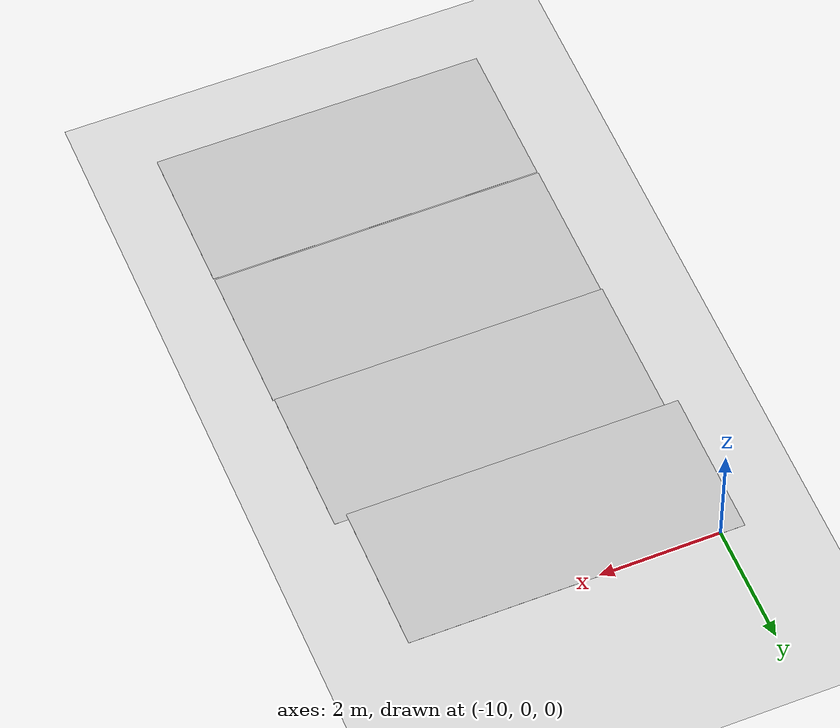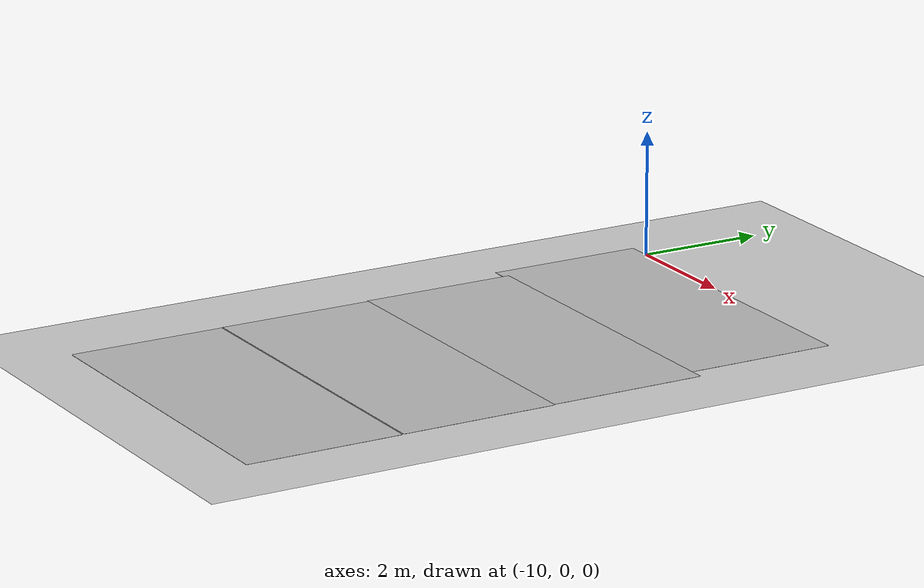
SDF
<sdf version="1.6">
 <world name="default">
  <light name="sun" type="directional">
   <pose>0 0 10 0 -0 0</pose>
   <diffuse>0.8 0.8 0.8 1</diffuse>
   <specular>0.2 0.2 0.2 1</specular>
   <attenuation>
    <range>1000</range>
    <constant>0.9</constant>
    <linear>0.01</linear>
    <quadratic>0.001</quadratic>
   </attenuation>
   <direction>-0.5 0.1 -0.9</direction>
  </light>
  <model name="ground_plane">
   <static>1</static>
   <link name="link">
    <collision name="collision">
     <geometry><plane><normal>0 0 1</normal><size>1000 100</size></plane></geometry>
     <surface>
      <contact><collide_bitmask>65535</collide_bitmask></contact>
      <friction><ode><mu>100</mu><mu2>50</mu2></ode></friction>
     </surface>
    </collision>
    <visual name="visual">
     <cast_shadows>0</cast_shadows>
     <geometry><plane><normal>0 0 1</normal><size>1000 100</size></plane></geometry>
     <material>
      <script><uri>file://media/materials/scripts/gazebo.material</uri><name>Gazebo/Grey</name></script>
     </material>
    </visual>
   </link>
  </model>
  <gravity>0 0 -9.8</gravity>
  <magnetic_field>6e-06 2.3e-05 -4.2e-05</magnetic_field>
  <atmosphere type="adiabatic"/>
  <physics name="default_physics" default="0" type="ode">
   <max_step_size>0.001</max_step_size>
   <real_time_factor>1</real_time_factor>
   <real_time_update_rate>1000</real_time_update_rate>
  </physics>
  <scene><ambient>0.4 0.4 0.4 1</ambient><background>0.7 0.7 0.7 1</background><shadows>1</shadows></scene>
  <spherical_coordinates>
   <surface_model>EARTH_WGS84</surface_model>
   <latitude_deg>0</latitude_deg>
   <longitude_deg>0</longitude_deg>
   <elevation>0</elevation>
   <heading_deg>0</heading_deg>
  </spherical_coordinates>
  <model name="parking_slot">
   <static>1</static>
   <link name="link">
    <collision name="collision">
     <geometry><plane><normal>0 0 1</normal><size>5.5 2.5</size></plane></geometry>
     <surface><friction><ode><mu>100</mu><mu2>50</mu2></ode></friction></surface>
    </collision>
    <visual name="visual">
     <cast_shadows>0</cast_shadows>
     <geometry><plane><normal>0 0 1</normal><size>5.5 2.5</size></plane></geometry>
     <material>
      <script>
       <uri>model://parking_slot/materials/scripts</uri>
       <uri>model://parking_slot/materials/textures/</uri>
       <name>MyGroundPlane/Image</name>
      </script>
     </material>
    </visual>
   </link>
   <pose>-7.38349 -8.64838 0 0 -0 0</pose>
  </model>
  <model name="parking_slot_0">
   <static>1</static>
   <link name="link">
    <collision name="collision">
     <geometry><plane><normal>0 0 1</normal><size>5.5 2.5</size></plane></geometry>
     <surface><friction><ode><mu>100</mu><mu2>50</mu2></ode></friction></surface>
    </collision>
    <visual name="visual">
     <cast_shadows>0</cast_shadows>
     <geometry><plane><normal>0 0 1</normal><size>5.5 2.5</size></plane></geometry>
     <material>
      <script>
       <uri>model://parking_slot/materials/scripts</uri>
       <uri>model://parking_slot/materials/textures/</uri>
       <name>MyGroundPlane/Image</name>
      </script>
     </material>
    </visual>
   </link>
   <pose>-7.39404 -6.1273 0 0 -0 0</pose>
  </model>
  <model name="parking_slot_1">
   <static>1</static>
   <link name="link">
    <collision name="collision">
     <geometry><plane><normal>0 0 1</normal><size>5.5 2.5</size></plane></geometry>
     <surface><friction><ode><mu>100</mu><mu2>50</mu2></ode></friction></surface>
    </collision>
    <visual name="visual">
     <cast_shadows>0</cast_shadows>
     <geometry><plane><normal>0 0 1</normal><size>5.5 2.5</size></plane></geometry>
     <material>
      <script>
       <uri>model://parking_slot/materials/scripts</uri>
       <uri>model://parking_slot/materials/textures/</uri>
       <name>MyGroundPlane/Image</name>
      </script>
     </material>
    </visual>
   </link>
   <pose>-7.41915 -3.63841 0 0 -0 0</pose>
  </model>
  <model name="parking_slot_2">
   <static>1</static>
   <link name="link">
    <collision name="collision">
     <geometry><plane><normal>0 0 1</normal><size>5.5 2.5</size></plane></geometry>
     <surface><friction><ode><mu>100</mu><mu2>50</mu2></ode></friction></surface>
    </collision>
    <visual name="visual">
     <cast_shadows>0</cast_shadows>
     <geometry><plane><normal>0 0 1</normal><size>5.5 2.5</size></plane></geometry>
     <material>
      <script>
       <uri>model://parking_slot/materials/scripts</uri>
       <uri>model://parking_slot/materials/textures/</uri>
       <name>MyGroundPlane/Image</name>
      </script>
     </material>
    </visual>
   </link>
   <pose>-7.64742 -1.23984 0 0 -0 0</pose>
  </model>
 </world>
</sdf>
